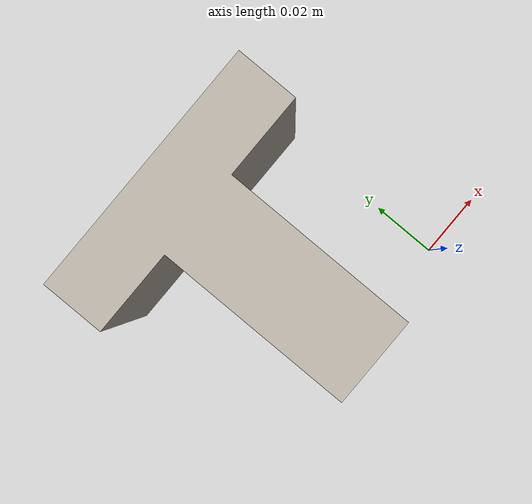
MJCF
<mujoco model="T">
  <asset>
    <mesh file="meshes/T.stl" scale="1 1 1"  name="T_mesh"/>
    <texture type="skybox" file="../textures/metal.png" name="tex-metal"/>
    <material name="metal" reflectance="0.7" texrepeat="5 5" texture="tex-metal" texuniform="true"/>
  </asset>
  <worldbody>
    <body>
      <body name="collision">
        <geom pos="0 0 0" mesh="T_mesh" type="mesh" solimp="0.998 0.998 0.001" solref="0.001 1" density="50" friction="0.95 0.3 0.1" material="metal" group="1" condim="4"/>
        <!--geom pos="0 0 0" mesh="bottle1_mesh" type="mesh" solimp="0.998 0.998 0.001" solref="0.001 1" density="50" friction="0.95 0.3 0.1" material="glass" group="0"/-->
      </body>
      <body name="visual">
        <geom pos="0 0 0" mesh="T_mesh" type="mesh" material="metal" conaffinity="0" contype="0" group="0" mass="0.0001"/>
        <geom pos="0 0 0" mesh="T_mesh" type="mesh" material="metal" conaffinity="0" contype="0" group="1" mass="0.0001"/>
      </body>
      <site rgba="0 0 0 0" size="0.005" pos="0 0 -0.082" name="bottom_site"/>
      <site rgba="0 0 0 0" size="0.005" pos="0 0 0.075" name="top_site"/>
      <site rgba="0 0 0 0" size="0.005" pos="0.0254 0.0254 0" name="horizontal_radius_site"/>
    </body>
  </worldbody>
</mujoco>
